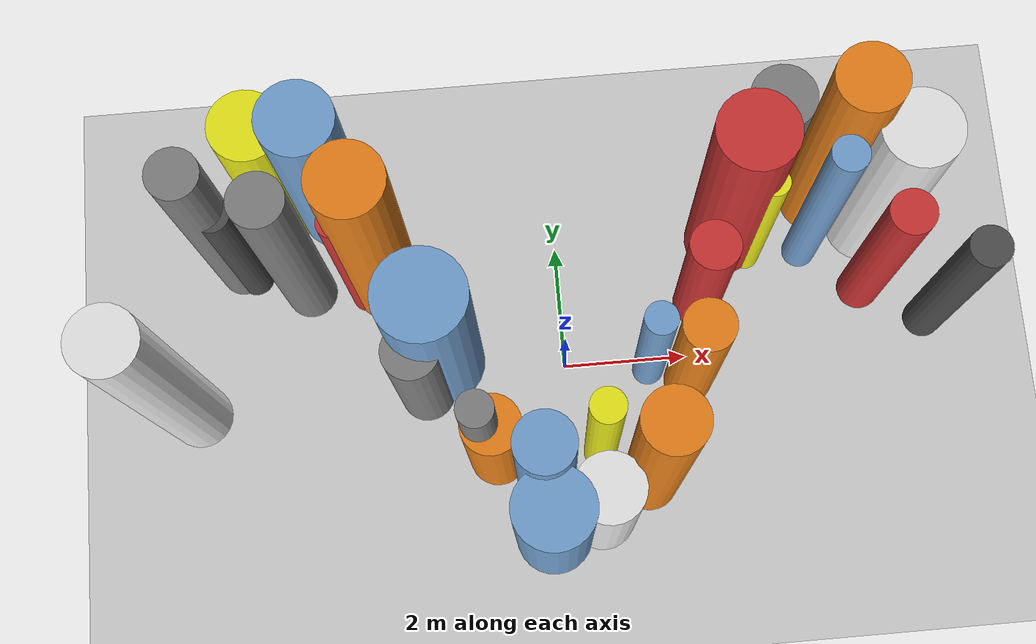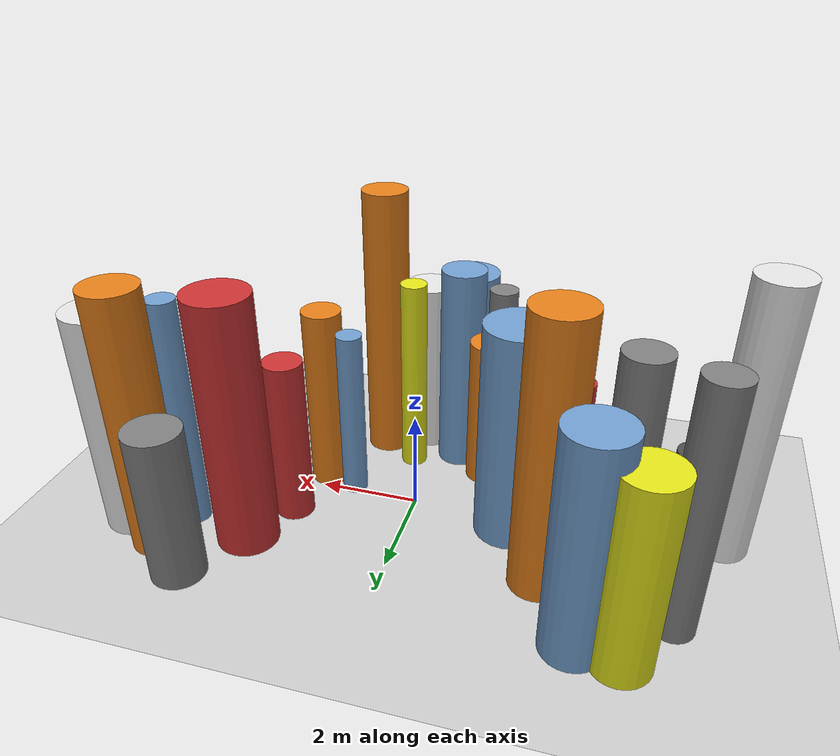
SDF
<?xml version='1.0'?>
<sdf version='1.6'>
  <world name='routeA_rl_v1__dense_recovery__rl_train__s_turn_multi_obstacle__000096'>
    <!-- Sun light -->
    <light name='sun' type='directional'>
      <cast_shadows>1</cast_shadows>
      <pose>0 0 10 0 0 0</pose>
      <diffuse>0.8 0.8 0.8 1</diffuse>
      <specular>0.2 0.2 0.2 1</specular>
      <attenuation>
        <range>1000</range>
        <constant>0.9</constant>
        <linear>0.01</linear>
        <quadratic>0.001</quadratic>
      </attenuation>
      <direction>-0.5 0.1 -0.9</direction>
    </light>

    <!-- Ground plane -->
    <model name='ground_plane'>
      <static>1</static>
      <link name='link'>
        <collision name='collision'>
          <geometry>
            <plane>
              <normal>0 0 1</normal>
              <size>100 100</size>
            </plane>
          </geometry>
          <surface>
            <contact>
              <collide_bitmask>65535</collide_bitmask>
              <ode/>
            </contact>
            <friction>
              <ode>
                <mu>100</mu>
                <mu2>50</mu2>
              </ode>
              <torsional><ode/></torsional>
            </friction>
            <bounce/>
          </surface>
          <max_contacts>10</max_contacts>
        </collision>
        <visual name='visual'>
          <cast_shadows>0</cast_shadows>
          <geometry>
            <plane>
              <normal>0 0 1</normal>
              <size>100 100</size>
            </plane>
          </geometry>
          <material>
            <script>
              <uri>file://media/materials/scripts/gazebo.material</uri>
              <n>Gazebo/Grey</n>
            </script>
          </material>
        </visual>
      </link>
    </model>

    <!-- Environment -->
    <magnetic_field>6e-06 2.3e-05 -4.2e-05</magnetic_field>
    <atmosphere type='adiabatic'/>
    <physics name='default_physics' default='0' type='ode'>
      <gravity>0 0 -9.8</gravity>
      <max_step_size>0.004</max_step_size>
      <real_time_factor>1</real_time_factor>
      <real_time_update_rate>250</real_time_update_rate>
    </physics>
    <scene>
      <ambient>0.4 0.4 0.4 1</ambient>
      <background>0.7 0.7 0.7 1</background>
      <shadows>1</shadows>
    </scene>
    <wind/>
    <spherical_coordinates>
      <surface_model>EARTH_WGS84</surface_model>
      <latitude_deg>0</latitude_deg>
      <longitude_deg>0</longitude_deg>
      <elevation>0</elevation>
      <heading_deg>0</heading_deg>
    </spherical_coordinates>

    <!-- ============ OBSTACLES (28) ============ -->
    <model name='s_turn_obs_0'>
      <static>1</static>
      <link name='link'>
        <visual name='visual'>
          <geometry>
            <cylinder>
              <radius>0.5083</radius>
              <length>5.5677</length>
            </cylinder>
          </geometry>
          <material>
            <script>
              <n>Gazebo/White</n>
              <uri>file://media/materials/scripts/gazebo.material</uri>
            </script>
            <ambient>0.9 0.9 0.9 1</ambient>
          </material>
        </visual>
        <collision name='collision'>
          <geometry>
            <cylinder>
              <radius>0.5083</radius>
              <length>5.5677</length>
            </cylinder>
          </geometry>
          <max_contacts>10</max_contacts>
          <surface>
            <contact><ode/></contact>
            <bounce/>
            <friction>
              <ode><mu>1</mu><mu2>1</mu2></ode>
              <torsional><ode/></torsional>
            </friction>
          </surface>
        </collision>
      </link>
      <pose>-6.0000 -0.3235 2.7838 0 0 0.0000</pose>
    </model>

    <model name='s_turn_obs_1'>
      <static>1</static>
      <link name='link'>
        <visual name='visual'>
          <geometry>
            <cylinder>
              <radius>0.3893</radius>
              <length>4.9494</length>
            </cylinder>
          </geometry>
          <material>
            <script>
              <n>Gazebo/Grey</n>
              <uri>file://media/materials/scripts/gazebo.material</uri>
            </script>
            <ambient>0.5 0.5 0.5 1</ambient>
          </material>
        </visual>
        <collision name='collision'>
          <geometry>
            <cylinder>
              <radius>0.3893</radius>
              <length>4.9494</length>
            </cylinder>
          </geometry>
          <max_contacts>10</max_contacts>
          <surface>
            <contact><ode/></contact>
            <bounce/>
            <friction>
              <ode><mu>1</mu><mu2>1</mu2></ode>
              <torsional><ode/></torsional>
            </friction>
          </surface>
        </collision>
      </link>
      <pose>-5.2000 2.0823 2.4747 0 0 0.0000</pose>
    </model>

    <model name='s_turn_obs_2'>
      <static>1</static>
      <link name='link'>
        <visual name='visual'>
          <geometry>
            <cylinder>
              <radius>0.5554</radius>
              <length>3.8889</length>
            </cylinder>
          </geometry>
          <material>
            <script>
              <n>Gazebo/Yellow</n>
              <uri>file://media/materials/scripts/gazebo.material</uri>
            </script>
            <ambient>0.9 0.9 0.1 1</ambient>
          </material>
        </visual>
        <collision name='collision'>
          <geometry>
            <cylinder>
              <radius>0.5554</radius>
              <length>3.8889</length>
            </cylinder>
          </geometry>
          <max_contacts>10</max_contacts>
          <surface>
            <contact><ode/></contact>
            <bounce/>
            <friction>
              <ode><mu>1</mu><mu2>1</mu2></ode>
              <torsional><ode/></torsional>
            </friction>
          </surface>
        </collision>
      </link>
      <pose>-4.4000 3.1250 1.9444 0 0 0.0000</pose>
    </model>

    <model name='s_turn_obs_3'>
      <static>1</static>
      <link name='link'>
        <visual name='visual'>
          <geometry>
            <cylinder>
              <radius>0.5907</radius>
              <length>4.3639</length>
            </cylinder>
          </geometry>
          <material>
            <script>
              <n>Gazebo/Blue</n>
              <uri>file://media/materials/scripts/gazebo.material</uri>
            </script>
            <ambient>0.447 0.624 0.812 1</ambient>
          </material>
        </visual>
        <collision name='collision'>
          <geometry>
            <cylinder>
              <radius>0.5907</radius>
              <length>4.3639</length>
            </cylinder>
          </geometry>
          <max_contacts>10</max_contacts>
          <surface>
            <contact><ode/></contact>
            <bounce/>
            <friction>
              <ode><mu>1</mu><mu2>1</mu2></ode>
              <torsional><ode/></torsional>
            </friction>
          </surface>
        </collision>
      </link>
      <pose>-3.6000 2.9838 2.1819 0 0 0.0000</pose>
    </model>

    <model name='s_turn_obs_4'>
      <static>1</static>
      <link name='link'>
        <visual name='visual'>
          <geometry>
            <cylinder>
              <radius>0.5651</radius>
              <length>5.4919</length>
            </cylinder>
          </geometry>
          <material>
            <script>
              <n>Gazebo/Orange</n>
              <uri>file://media/materials/scripts/gazebo.material</uri>
            </script>
            <ambient>0.9 0.5 0.1 1</ambient>
          </material>
        </visual>
        <collision name='collision'>
          <geometry>
            <cylinder>
              <radius>0.5651</radius>
              <length>5.4919</length>
            </cylinder>
          </geometry>
          <max_contacts>10</max_contacts>
          <surface>
            <contact><ode/></contact>
            <bounce/>
            <friction>
              <ode><mu>1</mu><mu2>1</mu2></ode>
              <torsional><ode/></torsional>
            </friction>
          </surface>
        </collision>
      </link>
      <pose>-2.8000 1.6117 2.7459 0 0 0.0000</pose>
    </model>

    <model name='s_turn_obs_5'>
      <static>1</static>
      <link name='link'>
        <visual name='visual'>
          <geometry>
            <cylinder>
              <radius>0.6980</radius>
              <length>4.4285</length>
            </cylinder>
          </geometry>
          <material>
            <script>
              <n>Gazebo/Blue</n>
              <uri>file://media/materials/scripts/gazebo.material</uri>
            </script>
            <ambient>0.447 0.624 0.812 1</ambient>
          </material>
        </visual>
        <collision name='collision'>
          <geometry>
            <cylinder>
              <radius>0.6980</radius>
              <length>4.4285</length>
            </cylinder>
          </geometry>
          <max_contacts>10</max_contacts>
          <surface>
            <contact><ode/></contact>
            <bounce/>
            <friction>
              <ode><mu>1</mu><mu2>1</mu2></ode>
              <torsional><ode/></torsional>
            </friction>
          </surface>
        </collision>
      </link>
      <pose>-2.0000 0.2489 2.2142 0 0 0.0000</pose>
    </model>

    <model name='s_turn_obs_6'>
      <static>1</static>
      <link name='link'>
        <visual name='visual'>
          <geometry>
            <cylinder>
              <radius>0.4584</radius>
              <length>3.1537</length>
            </cylinder>
          </geometry>
          <material>
            <script>
              <n>Gazebo/Orange</n>
              <uri>file://media/materials/scripts/gazebo.material</uri>
            </script>
            <ambient>0.9 0.5 0.1 1</ambient>
          </material>
        </visual>
        <collision name='collision'>
          <geometry>
            <cylinder>
              <radius>0.4584</radius>
              <length>3.1537</length>
            </cylinder>
          </geometry>
          <max_contacts>10</max_contacts>
          <surface>
            <contact><ode/></contact>
            <bounce/>
            <friction>
              <ode><mu>1</mu><mu2>1</mu2></ode>
              <torsional><ode/></torsional>
            </friction>
          </surface>
        </collision>
      </link>
      <pose>-1.2000 -1.4065 1.5768 0 0 0.0000</pose>
    </model>

    <model name='s_turn_obs_7'>
      <static>1</static>
      <link name='link'>
        <visual name='visual'>
          <geometry>
            <cylinder>
              <radius>0.6105</radius>
              <length>3.9938</length>
            </cylinder>
          </geometry>
          <material>
            <script>
              <n>Gazebo/Blue</n>
              <uri>file://media/materials/scripts/gazebo.material</uri>
            </script>
            <ambient>0.447 0.624 0.812 1</ambient>
          </material>
        </visual>
        <collision name='collision'>
          <geometry>
            <cylinder>
              <radius>0.6105</radius>
              <length>3.9938</length>
            </cylinder>
          </geometry>
          <max_contacts>10</max_contacts>
          <surface>
            <contact><ode/></contact>
            <bounce/>
            <friction>
              <ode><mu>1</mu><mu2>1</mu2></ode>
              <torsional><ode/></torsional>
            </friction>
          </surface>
        </collision>
      </link>
      <pose>-0.4000 -2.7650 1.9969 0 0 0.0000</pose>
    </model>

    <model name='s_turn_obs_8'>
      <static>1</static>
      <link name='link'>
        <visual name='visual'>
          <geometry>
            <cylinder>
              <radius>0.5190</radius>
              <length>3.7488</length>
            </cylinder>
          </geometry>
          <material>
            <script>
              <n>Gazebo/White</n>
              <uri>file://media/materials/scripts/gazebo.material</uri>
            </script>
            <ambient>0.9 0.9 0.9 1</ambient>
          </material>
        </visual>
        <collision name='collision'>
          <geometry>
            <cylinder>
              <radius>0.5190</radius>
              <length>3.7488</length>
            </cylinder>
          </geometry>
          <max_contacts>10</max_contacts>
          <surface>
            <contact><ode/></contact>
            <bounce/>
            <friction>
              <ode><mu>1</mu><mu2>1</mu2></ode>
              <torsional><ode/></torsional>
            </friction>
          </surface>
        </collision>
      </link>
      <pose>0.4000 -2.5321 1.8744 0 0 0.0000</pose>
    </model>

    <model name='s_turn_obs_9'>
      <static>1</static>
      <link name='link'>
        <visual name='visual'>
          <geometry>
            <cylinder>
              <radius>0.4616</radius>
              <length>5.8159</length>
            </cylinder>
          </geometry>
          <material>
            <script>
              <n>Gazebo/Orange</n>
              <uri>file://media/materials/scripts/gazebo.material</uri>
            </script>
            <ambient>0.9 0.5 0.1 1</ambient>
          </material>
        </visual>
        <collision name='collision'>
          <geometry>
            <cylinder>
              <radius>0.4616</radius>
              <length>5.8159</length>
            </cylinder>
          </geometry>
          <max_contacts>10</max_contacts>
          <surface>
            <contact><ode/></contact>
            <bounce/>
            <friction>
              <ode><mu>1</mu><mu2>1</mu2></ode>
              <torsional><ode/></torsional>
            </friction>
          </surface>
        </collision>
      </link>
      <pose>1.2000 -2.0198 2.9079 0 0 0.0000</pose>
    </model>

    <model name='s_turn_obs_10'>
      <static>1</static>
      <link name='link'>
        <visual name='visual'>
          <geometry>
            <cylinder>
              <radius>0.3947</radius>
              <length>3.8742</length>
            </cylinder>
          </geometry>
          <material>
            <script>
              <n>Gazebo/Orange</n>
              <uri>file://media/materials/scripts/gazebo.material</uri>
            </script>
            <ambient>0.9 0.5 0.1 1</ambient>
          </material>
        </visual>
        <collision name='collision'>
          <geometry>
            <cylinder>
              <radius>0.3947</radius>
              <length>3.8742</length>
            </cylinder>
          </geometry>
          <max_contacts>10</max_contacts>
          <surface>
            <contact><ode/></contact>
            <bounce/>
            <friction>
              <ode><mu>1</mu><mu2>1</mu2></ode>
              <torsional><ode/></torsional>
            </friction>
          </surface>
        </collision>
      </link>
      <pose>2.0000 -0.3918 1.9371 0 0 0.0000</pose>
    </model>

    <model name='s_turn_obs_11'>
      <static>1</static>
      <link name='link'>
        <visual name='visual'>
          <geometry>
            <cylinder>
              <radius>0.6056</radius>
              <length>5.1377</length>
            </cylinder>
          </geometry>
          <material>
            <script>
              <n>Gazebo/Red</n>
              <uri>file://media/materials/scripts/gazebo.material</uri>
            </script>
            <ambient>0.8 0.2 0.2 1</ambient>
          </material>
        </visual>
        <collision name='collision'>
          <geometry>
            <cylinder>
              <radius>0.6056</radius>
              <length>5.1377</length>
            </cylinder>
          </geometry>
          <max_contacts>10</max_contacts>
          <surface>
            <contact><ode/></contact>
            <bounce/>
            <friction>
              <ode><mu>1</mu><mu2>1</mu2></ode>
              <torsional><ode/></torsional>
            </friction>
          </surface>
        </collision>
      </link>
      <pose>2.8000 1.9583 2.5689 0 0 0.0000</pose>
    </model>

    <model name='s_turn_obs_12'>
      <static>1</static>
      <link name='link'>
        <visual name='visual'>
          <geometry>
            <cylinder>
              <radius>0.5237</radius>
              <length>3.1067</length>
            </cylinder>
          </geometry>
          <material>
            <script>
              <n>Gazebo/Grey</n>
              <uri>file://media/materials/scripts/gazebo.material</uri>
            </script>
            <ambient>0.5 0.5 0.5 1</ambient>
          </material>
        </visual>
        <collision name='collision'>
          <geometry>
            <cylinder>
              <radius>0.5237</radius>
              <length>3.1067</length>
            </cylinder>
          </geometry>
          <max_contacts>10</max_contacts>
          <surface>
            <contact><ode/></contact>
            <bounce/>
            <friction>
              <ode><mu>1</mu><mu2>1</mu2></ode>
              <torsional><ode/></torsional>
            </friction>
          </surface>
        </collision>
      </link>
      <pose>3.6000 3.2104 1.5534 0 0 0.0000</pose>
    </model>

    <model name='s_turn_obs_13'>
      <static>1</static>
      <link name='link'>
        <visual name='visual'>
          <geometry>
            <cylinder>
              <radius>0.5243</radius>
              <length>5.2951</length>
            </cylinder>
          </geometry>
          <material>
            <script>
              <n>Gazebo/Orange</n>
              <uri>file://media/materials/scripts/gazebo.material</uri>
            </script>
            <ambient>0.9 0.5 0.1 1</ambient>
          </material>
        </visual>
        <collision name='collision'>
          <geometry>
            <cylinder>
              <radius>0.5243</radius>
              <length>5.2951</length>
            </cylinder>
          </geometry>
          <max_contacts>10</max_contacts>
          <surface>
            <contact><ode/></contact>
            <bounce/>
            <friction>
              <ode><mu>1</mu><mu2>1</mu2></ode>
              <torsional><ode/></torsional>
            </friction>
          </surface>
        </collision>
      </link>
      <pose>4.4000 2.5175 2.6476 0 0 0.0000</pose>
    </model>

    <model name='s_turn_obs_14'>
      <static>1</static>
      <link name='link'>
        <visual name='visual'>
          <geometry>
            <cylinder>
              <radius>0.6066</radius>
              <length>4.5462</length>
            </cylinder>
          </geometry>
          <material>
            <script>
              <n>Gazebo/White</n>
              <uri>file://media/materials/scripts/gazebo.material</uri>
            </script>
            <ambient>0.9 0.9 0.9 1</ambient>
          </material>
        </visual>
        <collision name='collision'>
          <geometry>
            <cylinder>
              <radius>0.6066</radius>
              <length>4.5462</length>
            </cylinder>
          </geometry>
          <max_contacts>10</max_contacts>
          <surface>
            <contact><ode/></contact>
            <bounce/>
            <friction>
              <ode><mu>1</mu><mu2>1</mu2></ode>
              <torsional><ode/></torsional>
            </friction>
          </surface>
        </collision>
      </link>
      <pose>5.2000 2.0124 2.2731 0 0 0.0000</pose>
    </model>

    <model name='s_turn_obs_15'>
      <static>1</static>
      <link name='link'>
        <visual name='visual'>
          <geometry>
            <cylinder>
              <radius>0.3147</radius>
              <length>4.1666</length>
            </cylinder>
          </geometry>
          <material>
            <script>
              <n>Gazebo/DarkGrey</n>
              <uri>file://media/materials/scripts/gazebo.material</uri>
            </script>
            <ambient>0.3 0.3 0.3 1</ambient>
          </material>
        </visual>
        <collision name='collision'>
          <geometry>
            <cylinder>
              <radius>0.3147</radius>
              <length>4.1666</length>
            </cylinder>
          </geometry>
          <max_contacts>10</max_contacts>
          <surface>
            <contact><ode/></contact>
            <bounce/>
            <friction>
              <ode><mu>1</mu><mu2>1</mu2></ode>
              <torsional><ode/></torsional>
            </friction>
          </surface>
        </collision>
      </link>
      <pose>6.0000 0.3185 2.0833 0 0 0.0000</pose>
    </model>

    <model name='s_turn_obs2_0'>
      <static>1</static>
      <link name='link'>
        <visual name='visual'>
          <geometry>
            <cylinder>
              <radius>0.2791</radius>
              <length>3.5066</length>
            </cylinder>
          </geometry>
          <material>
            <script>
              <n>Gazebo/DarkGrey</n>
              <uri>file://media/materials/scripts/gazebo.material</uri>
            </script>
            <ambient>0.3 0.3 0.3 1</ambient>
          </material>
        </visual>
        <collision name='collision'>
          <geometry>
            <cylinder>
              <radius>0.2791</radius>
              <length>3.5066</length>
            </cylinder>
          </geometry>
          <max_contacts>10</max_contacts>
          <surface>
            <contact><ode/></contact>
            <bounce/>
            <friction>
              <ode><mu>1</mu><mu2>1</mu2></ode>
              <torsional><ode/></torsional>
            </friction>
          </surface>
        </collision>
      </link>
      <pose>-5.0000 1.9451 1.7533 0 0 0.0000</pose>
    </model>

    <model name='s_turn_obs2_1'>
      <static>1</static>
      <link name='link'>
        <visual name='visual'>
          <geometry>
            <cylinder>
              <radius>0.4152</radius>
              <length>4.9167</length>
            </cylinder>
          </geometry>
          <material>
            <script>
              <n>Gazebo/Grey</n>
              <uri>file://media/materials/scripts/gazebo.material</uri>
            </script>
            <ambient>0.5 0.5 0.5 1</ambient>
          </material>
        </visual>
        <collision name='collision'>
          <geometry>
            <cylinder>
              <radius>0.4152</radius>
              <length>4.9167</length>
            </cylinder>
          </geometry>
          <max_contacts>10</max_contacts>
          <surface>
            <contact><ode/></contact>
            <bounce/>
            <friction>
              <ode><mu>1</mu><mu2>1</mu2></ode>
              <torsional><ode/></torsional>
            </friction>
          </surface>
        </collision>
      </link>
      <pose>-4.0909 1.6226 2.4584 0 0 0.0000</pose>
    </model>

    <model name='s_turn_obs2_2'>
      <static>1</static>
      <link name='link'>
        <visual name='visual'>
          <geometry>
            <cylinder>
              <radius>0.2279</radius>
              <length>4.1533</length>
            </cylinder>
          </geometry>
          <material>
            <script>
              <n>Gazebo/Red</n>
              <uri>file://media/materials/scripts/gazebo.material</uri>
            </script>
            <ambient>0.8 0.2 0.2 1</ambient>
          </material>
        </visual>
        <collision name='collision'>
          <geometry>
            <cylinder>
              <radius>0.2279</radius>
              <length>4.1533</length>
            </cylinder>
          </geometry>
          <max_contacts>10</max_contacts>
          <surface>
            <contact><ode/></contact>
            <bounce/>
            <friction>
              <ode><mu>1</mu><mu2>1</mu2></ode>
              <torsional><ode/></torsional>
            </friction>
          </surface>
        </collision>
      </link>
      <pose>-3.1818 1.4661 2.0766 0 0 0.0000</pose>
    </model>

    <model name='s_turn_obs2_3'>
      <static>1</static>
      <link name='link'>
        <visual name='visual'>
          <geometry>
            <cylinder>
              <radius>0.4388</radius>
              <length>3.2791</length>
            </cylinder>
          </geometry>
          <material>
            <script>
              <n>Gazebo/Grey</n>
              <uri>file://media/materials/scripts/gazebo.material</uri>
            </script>
            <ambient>0.5 0.5 0.5 1</ambient>
          </material>
        </visual>
        <collision name='collision'>
          <geometry>
            <cylinder>
              <radius>0.4388</radius>
              <length>3.2791</length>
            </cylinder>
          </geometry>
          <max_contacts>10</max_contacts>
          <surface>
            <contact><ode/></contact>
            <bounce/>
            <friction>
              <ode><mu>1</mu><mu2>1</mu2></ode>
              <torsional><ode/></torsional>
            </friction>
          </surface>
        </collision>
      </link>
      <pose>-2.2727 -0.2658 1.6396 0 0 0.0000</pose>
    </model>

    <model name='s_turn_obs2_4'>
      <static>1</static>
      <link name='link'>
        <visual name='visual'>
          <geometry>
            <cylinder>
              <radius>0.2761</radius>
              <length>4.3022</length>
            </cylinder>
          </geometry>
          <material>
            <script>
              <n>Gazebo/Grey</n>
              <uri>file://media/materials/scripts/gazebo.material</uri>
            </script>
            <ambient>0.5 0.5 0.5 1</ambient>
          </material>
        </visual>
        <collision name='collision'>
          <geometry>
            <cylinder>
              <radius>0.2761</radius>
              <length>4.3022</length>
            </cylinder>
          </geometry>
          <max_contacts>10</max_contacts>
          <surface>
            <contact><ode/></contact>
            <bounce/>
            <friction>
              <ode><mu>1</mu><mu2>1</mu2></ode>
              <torsional><ode/></torsional>
            </friction>
          </surface>
        </collision>
      </link>
      <pose>-1.3636 -1.3747 2.1511 0 0 0.0000</pose>
    </model>

    <model name='s_turn_obs2_5'>
      <static>1</static>
      <link name='link'>
        <visual name='visual'>
          <geometry>
            <cylinder>
              <radius>0.4567</radius>
              <length>4.3930</length>
            </cylinder>
          </geometry>
          <material>
            <script>
              <n>Gazebo/Blue</n>
              <uri>file://media/materials/scripts/gazebo.material</uri>
            </script>
            <ambient>0.447 0.624 0.812 1</ambient>
          </material>
        </visual>
        <collision name='collision'>
          <geometry>
            <cylinder>
              <radius>0.4567</radius>
              <length>4.3930</length>
            </cylinder>
          </geometry>
          <max_contacts>10</max_contacts>
          <surface>
            <contact><ode/></contact>
            <bounce/>
            <friction>
              <ode><mu>1</mu><mu2>1</mu2></ode>
              <torsional><ode/></torsional>
            </friction>
          </surface>
        </collision>
      </link>
      <pose>-0.4545 -1.9273 2.1965 0 0 0.0000</pose>
    </model>

    <model name='s_turn_obs2_6'>
      <static>1</static>
      <link name='link'>
        <visual name='visual'>
          <geometry>
            <cylinder>
              <radius>0.2670</radius>
              <length>4.1721</length>
            </cylinder>
          </geometry>
          <material>
            <script>
              <n>Gazebo/Yellow</n>
              <uri>file://media/materials/scripts/gazebo.material</uri>
            </script>
            <ambient>0.9 0.9 0.1 1</ambient>
          </material>
        </visual>
        <collision name='collision'>
          <geometry>
            <cylinder>
              <radius>0.2670</radius>
              <length>4.1721</length>
            </cylinder>
          </geometry>
          <max_contacts>10</max_contacts>
          <surface>
            <contact><ode/></contact>
            <bounce/>
            <friction>
              <ode><mu>1</mu><mu2>1</mu2></ode>
              <torsional><ode/></torsional>
            </friction>
          </surface>
        </collision>
      </link>
      <pose>0.4545 -1.4630 2.0861 0 0 0.0000</pose>
    </model>

    <model name='s_turn_obs2_7'>
      <static>1</static>
      <link name='link'>
        <visual name='visual'>
          <geometry>
            <cylinder>
              <radius>0.2561</radius>
              <length>3.5490</length>
            </cylinder>
          </geometry>
          <material>
            <script>
              <n>Gazebo/Blue</n>
              <uri>file://media/materials/scripts/gazebo.material</uri>
            </script>
            <ambient>0.447 0.624 0.812 1</ambient>
          </material>
        </visual>
        <collision name='collision'>
          <geometry>
            <cylinder>
              <radius>0.2561</radius>
              <length>3.5490</length>
            </cylinder>
          </geometry>
          <max_contacts>10</max_contacts>
          <surface>
            <contact><ode/></contact>
            <bounce/>
            <friction>
              <ode><mu>1</mu><mu2>1</mu2></ode>
              <torsional><ode/></torsional>
            </friction>
          </surface>
        </collision>
      </link>
      <pose>1.3636 -0.1607 1.7745 0 0 0.0000</pose>
    </model>

    <model name='s_turn_obs2_8'>
      <static>1</static>
      <link name='link'>
        <visual name='visual'>
          <geometry>
            <cylinder>
              <radius>0.3859</radius>
              <length>3.3921</length>
            </cylinder>
          </geometry>
          <material>
            <script>
              <n>Gazebo/Red</n>
              <uri>file://media/materials/scripts/gazebo.material</uri>
            </script>
            <ambient>0.8 0.2 0.2 1</ambient>
          </material>
        </visual>
        <collision name='collision'>
          <geometry>
            <cylinder>
              <radius>0.3859</radius>
              <length>3.3921</length>
            </cylinder>
          </geometry>
          <max_contacts>10</max_contacts>
          <surface>
            <contact><ode/></contact>
            <bounce/>
            <friction>
              <ode><mu>1</mu><mu2>1</mu2></ode>
              <torsional><ode/></torsional>
            </friction>
          </surface>
        </collision>
      </link>
      <pose>2.2727 0.8960 1.6961 0 0 0.0000</pose>
    </model>

    <model name='s_turn_obs2_9'>
      <static>1</static>
      <link name='link'>
        <visual name='visual'>
          <geometry>
            <cylinder>
              <radius>0.2229</radius>
              <length>3.7975</length>
            </cylinder>
          </geometry>
          <material>
            <script>
              <n>Gazebo/Yellow</n>
              <uri>file://media/materials/scripts/gazebo.material</uri>
            </script>
            <ambient>0.9 0.9 0.1 1</ambient>
          </material>
        </visual>
        <collision name='collision'>
          <geometry>
            <cylinder>
              <radius>0.2229</radius>
              <length>3.7975</length>
            </cylinder>
          </geometry>
          <max_contacts>10</max_contacts>
          <surface>
            <contact><ode/></contact>
            <bounce/>
            <friction>
              <ode><mu>1</mu><mu2>1</mu2></ode>
              <torsional><ode/></torsional>
            </friction>
          </surface>
        </collision>
      </link>
      <pose>3.1818 1.6425 1.8988 0 0 0.0000</pose>
    </model>

    <model name='s_turn_obs2_10'>
      <static>1</static>
      <link name='link'>
        <visual name='visual'>
          <geometry>
            <cylinder>
              <radius>0.2773</radius>
              <length>4.7361</length>
            </cylinder>
          </geometry>
          <material>
            <script>
              <n>Gazebo/Blue</n>
              <uri>file://media/materials/scripts/gazebo.material</uri>
            </script>
            <ambient>0.447 0.624 0.812 1</ambient>
          </material>
        </visual>
        <collision name='collision'>
          <geometry>
            <cylinder>
              <radius>0.2773</radius>
              <length>4.7361</length>
            </cylinder>
          </geometry>
          <max_contacts>10</max_contacts>
          <surface>
            <contact><ode/></contact>
            <bounce/>
            <friction>
              <ode><mu>1</mu><mu2>1</mu2></ode>
              <torsional><ode/></torsional>
            </friction>
          </surface>
        </collision>
      </link>
      <pose>4.0909 1.6534 2.3681 0 0 0.0000</pose>
    </model>

    <model name='s_turn_obs2_11'>
      <static>1</static>
      <link name='link'>
        <visual name='visual'>
          <geometry>
            <cylinder>
              <radius>0.3468</radius>
              <length>4.1432</length>
            </cylinder>
          </geometry>
          <material>
            <script>
              <n>Gazebo/Red</n>
              <uri>file://media/materials/scripts/gazebo.material</uri>
            </script>
            <ambient>0.8 0.2 0.2 1</ambient>
          </material>
        </visual>
        <collision name='collision'>
          <geometry>
            <cylinder>
              <radius>0.3468</radius>
              <length>4.1432</length>
            </cylinder>
          </geometry>
          <max_contacts>10</max_contacts>
          <surface>
            <contact><ode/></contact>
            <bounce/>
            <friction>
              <ode><mu>1</mu><mu2>1</mu2></ode>
              <torsional><ode/></torsional>
            </friction>
          </surface>
        </collision>
      </link>
      <pose>5.0000 0.9224 2.0716 0 0 0.0000</pose>
    </model>

    <!-- GUI camera -->
    <gui fullscreen='0'>
      <camera name='user_camera'>
        <pose>-15 0 18 0 0.85 0.15</pose>
        <view_controller>orbit</view_controller>
        <projection_type>perspective</projection_type>
      </camera>
    </gui>
  </world>
</sdf>
